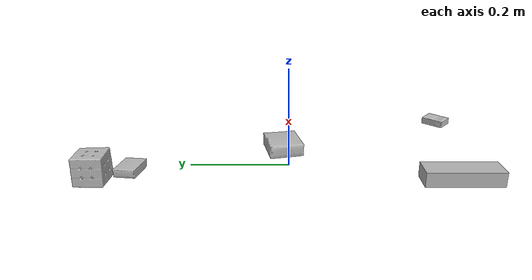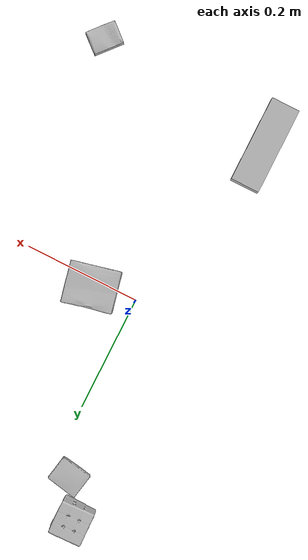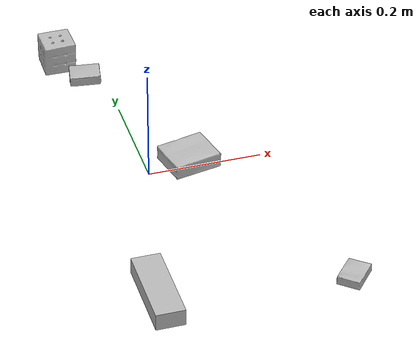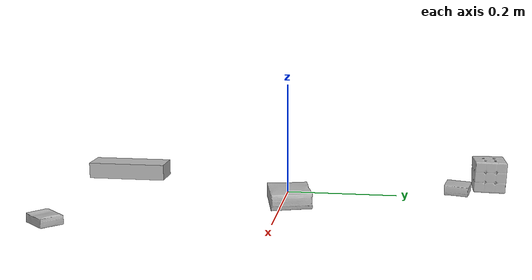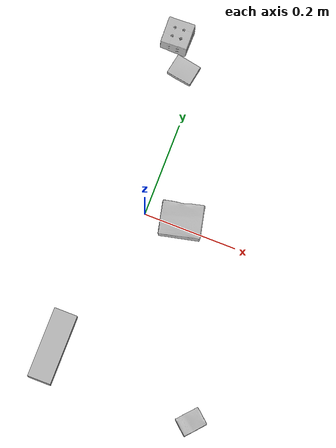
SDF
<sdf version="1.4">
  <world name="default">
    <light name="light1" type="point">
      <pose>0 0 1 0 0 0</pose>
      <diffuse>3 3 3 1</diffuse>
      <specular>3 3 3 1</specular>
    </light>
    <light name="light2" type="point">
      <pose>0 0.5 2 0 0 0</pose>
      <diffuse>1 1 1 1</diffuse>
      <specular>1 1 1 1</specular>
    </light>
    <light name="light3" type="point">
      <pose>0 0.5 2 0 0 0</pose>
      <diffuse>3 3 3 1</diffuse>
      <specular>3 3 3 1</specular>
    </light>
    <scene>
      <ambient>0.7 0.7 0.7</ambient>
    </scene>
    <model name="box1">
      <link name="link_box1">
        <collision name="default">
          <geometry>
            <mesh>
              <uri>model://jenga/collision_meshes/collision.obj</uri>
              <scale>1.0 1.0 1.0</scale>
            </mesh>
          </geometry>
          <surface>
            <friction>
              <ode>
                <mu>0.5</mu>
                <mu2>0.5</mu2>
              </ode>
            </friction>
          <contact>
        <ode>
            <max_vel>0</max_vel>
            <min_depth>0.0001</min_depth>
            <kp>1e8</kp>
        </ode>
    </contact></surface>
        </collision>
        <visual name="default">
          <geometry>
            <mesh>
              <uri>model://jenga/visual_meshes/visual.dae</uri>
              <scale>1.0 1.0 1.0</scale>
            </mesh>
          </geometry>
        </visual>
        <inertial>
          <mass>0.2062758058309555</mass>
          <pose>-2.502855807051674e-07 -0.00010250010382151231 -4.092339804628864e-05 0.0 -7.342154049184251e-07 0.0</pose>
          <inertia>
            <ixx>5.7081514e-05</ixx>
            <iyy>0.0003867828</iyy>
            <izz>0.00041292355</izz>
            <ixy>0</ixy>
            <ixz>0</ixz>
            <iyz>0</iyz>
          </inertia>
        </inertial>
      </link>
      <pose>-0.07511528581380844 -0.3262001872062683 0.01499999687075615 1.5730648665700892e-08 -1.9550740316521286e-09 -1.5713508533637486</pose>
    </model>
    <model name="box2">
      <link name="link_box2">
        <collision name="default">
          <geometry>
            <mesh>
              <uri>model://cracker_box/collision_meshes/collision.obj</uri>
              <scale>0.25 0.25 0.25</scale>
            </mesh>
          </geometry>
          <surface>
            <friction>
              <ode>
                <mu>0.5</mu>
                <mu2>0.5</mu2>
              </ode>
            </friction>
          <contact>
        <ode>
            <max_vel>0</max_vel>
            <min_depth>0.0001</min_depth>
            <kp>1e8</kp>
        </ode>
    </contact></surface>
        </collision>
        <visual name="default">
          <geometry>
            <mesh>
              <uri>model://cracker_box/visual_meshes/visual.dae</uri>
              <scale>0.25 0.25 0.25</scale>
            </mesh>
          </geometry>
        </visual>
        <inertial>
          <mass>0.023937078192830086</mass>
          <pose>0.00023660386796109378 6.358562677633017e-05 -0.00042573839891701937 -0.00031620780222672953 -0.011106490531565828 0.0025467947702904154</pose>
          <inertia>
            <ixx>3.8053279e-06</ixx>
            <iyy>6.2833433e-06</iyy>
            <izz>8.966907e-06</izz>
            <ixy>0</ixy>
            <ixz>0</ixz>
            <iyz>0</iyz>
          </inertia>
        </inertial>
      </link>
      <pose>0.24326804280281067 -0.36676034331321716 0.009096031077206135 -0.014050380657022805 -0.00501679250796798 0.8564825438245917</pose>
    </model>
    <model name="box3">
      <link name="link_box3">
        <collision name="default">
          <geometry>
            <mesh>
              <uri>model://pudding_box/collision_meshes/collision.obj</uri>
              <scale>0.5 0.5 0.5</scale>
            </mesh>
          </geometry>
          <surface>
            <friction>
              <ode>
                <mu>0.5</mu>
                <mu2>0.5</mu2>
              </ode>
            </friction>
          <contact>
        <ode>
            <max_vel>0</max_vel>
            <min_depth>0.0001</min_depth>
            <kp>1e8</kp>
        </ode>
    </contact></surface>
        </collision>
        <visual name="default">
          <geometry>
            <mesh>
              <uri>model://pudding_box/visual_meshes/visual.dae</uri>
              <scale>0.5 0.5 0.5</scale>
            </mesh>
          </geometry>
        </visual>
        <inertial>
          <mass>0.06577561050653458</mass>
          <pose>0.0002447410661261529 0.00040339428232982755 -0.00025944135268218815 0.005213102261421096 -0.006603797796883786 0.020079827023418362</pose>
          <inertia>
            <ixx>1.8588986e-05</ixx>
            <iyy>1.2506803e-05</iyy>
            <izz>2.7451497e-05</izz>
            <ixy>0</ixy>
            <ixz>0</ixz>
            <iyz>0</iyz>
          </inertia>
        </inertial>
      </link>
      <pose>-0.033847276121377945 0.3115384876728058 0.009862901642918587 0.022348523278902528 -0.011391760721641034 -1.755976333336154</pose>
    </model>
    <model name="box4">
      <link name="link_box4">
        <collision name="default">
          <geometry>
            <mesh>
              <uri>model://gelatin_box/collision_meshes/collision.obj</uri>
              <scale>1.0 1.0 1.0</scale>
            </mesh>
          </geometry>
          <surface>
            <friction>
              <ode>
                <mu>0.5</mu>
                <mu2>0.5</mu2>
              </ode>
            </friction>
          <contact>
        <ode>
            <max_vel>0</max_vel>
            <min_depth>0.0001</min_depth>
            <kp>1e8</kp>
        </ode>
    </contact></surface>
        </collision>
        <visual name="default">
          <geometry>
            <mesh>
              <uri>model://gelatin_box/visual_meshes/visual.dae</uri>
              <scale>1.0 1.0 1.0</scale>
            </mesh>
          </geometry>
        </visual>
        <inertial>
          <mass>0.21051041781902313</mass>
          <pose>0.000431961816502735 0.00011156871914863586 -0.0003640321083366871 -0.0010503719683328595 -0.0047558182256164224 0.016440557608480007</pose>
          <inertia>
            <ixx>0.0001486032</ixx>
            <iyy>0.00010614647</iyy>
            <izz>0.00022620716</izz>
            <ixy>0</ixy>
            <ixz>0</ixz>
            <iyz>0</iyz>
          </inertia>
        </inertial>
      </link>
      <pose>0.07594439387321472 0.012754952535033226 0.01516831386834383 0.005597493270189047 -0.007304558278987094 1.7878661837109453</pose>
    </model>
    <model name="box5">
      <link name="link_box5">
        <collision name="default">
          <geometry>
            <mesh>
              <uri>model://rubiks_cube/collision_meshes/collision.obj</uri>
              <scale>1.0 1.0 1.0</scale>
            </mesh>
          </geometry>
          <surface>
            <friction>
              <ode>
                <mu>0.5</mu>
                <mu2>0.5</mu2>
              </ode>
            </friction>
          <contact>
        <ode>
            <max_vel>0</max_vel>
            <min_depth>0.0001</min_depth>
            <kp>1e8</kp>
        </ode>
    </contact></surface>
        </collision>
        <visual name="default">
          <geometry>
            <mesh>
              <uri>model://rubiks_cube/visual_meshes/visual.dae</uri>
              <scale>1.0 1.0 1.0</scale>
            </mesh>
          </geometry>
        </visual>
        <inertial>
          <mass>0.13810032606124878</mass>
          <pose>2.6721041649580002e-05 5.256967051536776e-05 -7.264316082000732e-06 -0.05467240103362065 -0.09813937396878175 -0.03445717948301123</pose>
          <inertia>
            <ixx>7.63097e-05</ixx>
            <iyy>7.595384e-05</iyy>
            <izz>7.694205e-05</izz>
            <ixy>0</ixy>
            <ixz>0</ixz>
            <iyz>0</iyz>
          </inertia>
        </inertial>
      </link>
      <pose>-0.0706801563501358 0.3704770505428314 0.02867898903787136 -2.6555969912118237e-06 -8.732084249505416e-07 -3.1202324605832334</pose>
    </model>
  <physics type="ode">
      <max_contacts>50</max_contacts>
      <ode>
        <solver>
          <type>quick</type>
          <iters>75</iters>
        </solver>
        <constraints>
          <contact_max_correcting_vel>0</contact_max_correcting_vel>
          <contact_surface_layer>0</contact_surface_layer>
        </constraints>
      </ode>
    </physics></world>
</sdf>
